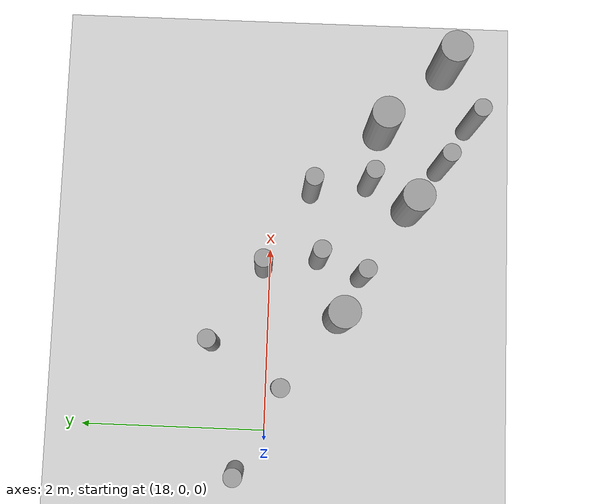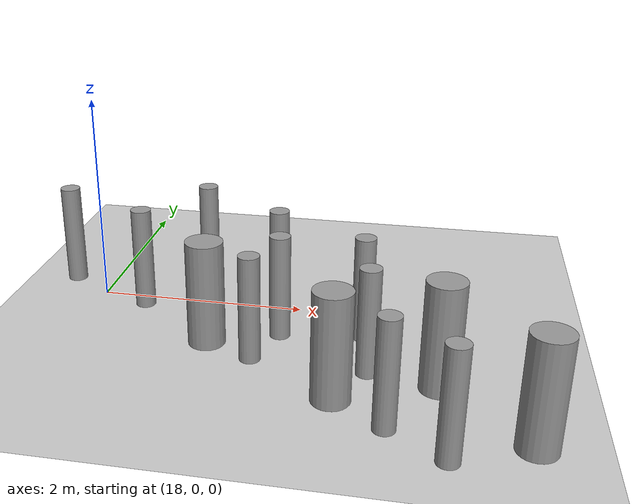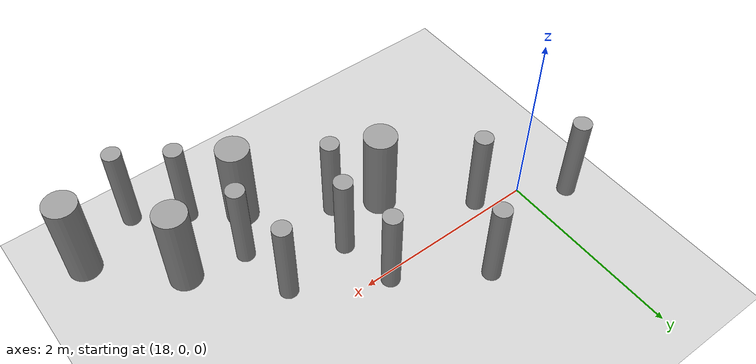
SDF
<sdf version="1.6">
 <world name="default">
  <model name="ground_plane">
   <static>1</static>
   <link name="link">
    <collision name="collision">
     <geometry><plane><normal>0 0 1</normal><size>100 100</size></plane></geometry>
     <surface><friction><ode><mu>100</mu><mu2>50</mu2></ode></friction></surface>
    </collision>
    <visual name="visual">
     <cast_shadows>0</cast_shadows>
     <geometry><plane><normal>0 0 1</normal><size>100 100</size></plane></geometry>
     <material>
      <script><uri>file://media/materials/scripts/gazebo.material</uri><name>Gazebo/Grey</name></script>
     </material>
    </visual>
   </link>
  </model>
  <model name="cyl_wall_clone_clone_1_clone_1">
   <link name="link_0">
    <pose>-2.73893 -0.366465 0 0 -0 0</pose>
    <inertial>
     <mass>0.0374993</mass>
     <inertia>
      <ixx>0.00321281</ixx>
      <ixy>0</ixy>
      <ixz>0</ixz>
      <iyy>0.00321281</iyy>
      <iyz>0</iyz>
      <izz>0.000175774</izz>
     </inertia>
    </inertial>
    <visual name="visual">
     <geometry><cylinder><radius>0.0968661</radius><length>1</length></cylinder></geometry>
     <material>
      <lighting>1</lighting>
      <script><uri>file://media/materials/scripts/gazebo.material</uri><name>Gazebo/Grey</name></script>
      <ambient>0.3 0.3 0.3 1</ambient>
      <diffuse>0.7 0.7 0.7 1</diffuse>
      <specular>0.01 0.01 0.01 1</specular>
      <emissive>0 0 0 1</emissive>
     </material>
    </visual>
    <collision name="collision">
     <geometry><cylinder><radius>0.096866</radius><length>1</length></cylinder></geometry>
     <surface>
      <friction>
       <ode><mu>1</mu><mu2>1</mu2><fdir1>0 0 0</fdir1><slip1>0</slip1><slip2>0</slip2></ode>
       <torsional>
        <coefficient>1</coefficient>
        <patch_radius>0</patch_radius>
        <surface_radius>0</surface_radius>
        <use_patch_radius>1</use_patch_radius>
        <ode><slip>0</slip></ode>
       </torsional>
      </friction>
      <bounce><restitution_coefficient>0</restitution_coefficient><threshold>1e+06</threshold></bounce>
      <contact>
       <collide_without_contact>0</collide_without_contact>
       <collide_without_contact_bitmask>1</collide_without_contact_bitmask>
       <collide_bitmask>1</collide_bitmask>
       <ode>
        <soft_cfm>0</soft_cfm>
        <soft_erp>0.2</soft_erp>
        <kp>1e+13</kp>
        <kd>1</kd>
        <max_vel>0.01</max_vel>
        <min_depth>0</min_depth>
       </ode>
       <bullet>
        <split_impulse>1</split_impulse>
        <split_impulse_penetration_threshold>-0.01</split_impulse_penetration_threshold>
        <soft_cfm>0</soft_cfm>
        <soft_erp>0.2</soft_erp>
        <kp>1e+13</kp>
        <kd>1</kd>
       </bullet>
      </contact>
     </surface>
    </collision>
   </link>
   <link name="link_0_clone">
    <pose>-1.73893 0.61877 0 0 -0 0</pose>
    <inertial>
     <mass>0.0374993</mass>
     <inertia>
      <ixx>0.00321281</ixx>
      <ixy>0</ixy>
      <ixz>0</ixz>
      <iyy>0.00321281</iyy>
      <iyz>0</iyz>
      <izz>0.000175774</izz>
     </inertia>
    </inertial>
    <visual name="visual">
     <geometry><cylinder><radius>0.0968661</radius><length>1</length></cylinder></geometry>
     <material>
      <lighting>1</lighting>
      <script><uri>file://media/materials/scripts/gazebo.material</uri><name>Gazebo/Grey</name></script>
      <ambient>0.3 0.3 0.3 1</ambient>
      <diffuse>0.7 0.7 0.7 1</diffuse>
      <specular>0.01 0.01 0.01 1</specular>
      <emissive>0 0 0 1</emissive>
      <shader type="pixel"/>
     </material>
    </visual>
    <collision name="collision">
     <geometry><cylinder><radius>0.096866</radius><length>1</length></cylinder></geometry>
     <surface>
      <friction>
       <ode><mu>1</mu><mu2>1</mu2><fdir1>0 0 0</fdir1><slip1>0</slip1><slip2>0</slip2></ode>
       <torsional>
        <coefficient>1</coefficient>
        <patch_radius>0</patch_radius>
        <surface_radius>0</surface_radius>
        <use_patch_radius>1</use_patch_radius>
        <ode><slip>0</slip></ode>
       </torsional>
      </friction>
      <bounce><restitution_coefficient>0</restitution_coefficient><threshold>1e+06</threshold></bounce>
      <contact>
       <collide_without_contact>0</collide_without_contact>
       <collide_without_contact_bitmask>1</collide_without_contact_bitmask>
       <collide_bitmask>1</collide_bitmask>
       <ode>
        <soft_cfm>0</soft_cfm>
        <soft_erp>0.2</soft_erp>
        <kp>1e+13</kp>
        <kd>1</kd>
        <max_vel>0.01</max_vel>
        <min_depth>0</min_depth>
       </ode>
       <bullet>
        <split_impulse>1</split_impulse>
        <split_impulse_penetration_threshold>-0.01</split_impulse_penetration_threshold>
        <soft_cfm>0</soft_cfm>
        <soft_erp>0.2</soft_erp>
        <kp>1e+13</kp>
        <kd>1</kd>
       </bullet>
      </contact>
     </surface>
    </collision>
   </link>
   <link name="link_0_clone_clone">
    <pose>-0.327073 0.143919 0 0 -0 0</pose>
    <inertial>
     <mass>0.0374993</mass>
     <inertia>
      <ixx>0.00321281</ixx>
      <ixy>0</ixy>
      <ixz>0</ixz>
      <iyy>0.00321281</iyy>
      <iyz>0</iyz>
      <izz>0.000175774</izz>
     </inertia>
    </inertial>
    <visual name="visual">
     <geometry><cylinder><radius>0.0968661</radius><length>1</length></cylinder></geometry>
     <material>
      <lighting>1</lighting>
      <script><uri>file://media/materials/scripts/gazebo.material</uri><name>Gazebo/Grey</name></script>
      <ambient>0.3 0.3 0.3 1</ambient>
      <diffuse>0.7 0.7 0.7 1</diffuse>
      <specular>0.01 0.01 0.01 1</specular>
      <emissive>0 0 0 1</emissive>
      <shader type="pixel"/>
     </material>
    </visual>
    <collision name="collision">
     <geometry><cylinder><radius>0.096866</radius><length>1</length></cylinder></geometry>
     <surface>
      <friction>
       <ode><mu>1</mu><mu2>1</mu2><fdir1>0 0 0</fdir1><slip1>0</slip1><slip2>0</slip2></ode>
       <torsional>
        <coefficient>1</coefficient>
        <patch_radius>0</patch_radius>
        <surface_radius>0</surface_radius>
        <use_patch_radius>1</use_patch_radius>
        <ode><slip>0</slip></ode>
       </torsional>
      </friction>
      <bounce><restitution_coefficient>0</restitution_coefficient><threshold>1e+06</threshold></bounce>
      <contact>
       <collide_without_contact>0</collide_without_contact>
       <collide_without_contact_bitmask>1</collide_without_contact_bitmask>
       <collide_bitmask>1</collide_bitmask>
       <ode>
        <soft_cfm>0</soft_cfm>
        <soft_erp>0.2</soft_erp>
        <kp>1e+13</kp>
        <kd>1</kd>
        <max_vel>0.01</max_vel>
        <min_depth>0</min_depth>
       </ode>
       <bullet>
        <split_impulse>1</split_impulse>
        <split_impulse_penetration_threshold>-0.01</split_impulse_penetration_threshold>
        <soft_cfm>0</soft_cfm>
        <soft_erp>0.2</soft_erp>
        <kp>1e+13</kp>
        <kd>1</kd>
       </bullet>
      </contact>
     </surface>
    </collision>
   </link>
   <link name="link_0_clone_clone_0">
    <pose>1.26107 -0.419359 0 0 -0 0</pose>
    <inertial>
     <mass>0.0374993</mass>
     <inertia>
      <ixx>0.00321281</ixx>
      <ixy>0</ixy>
      <ixz>0</ixz>
      <iyy>0.00321281</iyy>
      <iyz>0</iyz>
      <izz>0.000175774</izz>
     </inertia>
    </inertial>
    <visual name="visual">
     <geometry><cylinder><radius>0.0968661</radius><length>1</length></cylinder></geometry>
     <material>
      <lighting>1</lighting>
      <script><uri>file://media/materials/scripts/gazebo.material</uri><name>Gazebo/Grey</name></script>
      <ambient>0.3 0.3 0.3 1</ambient>
      <diffuse>0.7 0.7 0.7 1</diffuse>
      <specular>0.01 0.01 0.01 1</specular>
      <emissive>0 0 0 1</emissive>
      <shader type="pixel"/>
     </material>
    </visual>
    <collision name="collision">
     <geometry><cylinder><radius>0.096866</radius><length>1</length></cylinder></geometry>
     <surface>
      <friction>
       <ode><mu>1</mu><mu2>1</mu2><fdir1>0 0 0</fdir1><slip1>0</slip1><slip2>0</slip2></ode>
       <torsional>
        <coefficient>1</coefficient>
        <patch_radius>0</patch_radius>
        <surface_radius>0</surface_radius>
        <use_patch_radius>1</use_patch_radius>
        <ode><slip>0</slip></ode>
       </torsional>
      </friction>
      <bounce><restitution_coefficient>0</restitution_coefficient><threshold>1e+06</threshold></bounce>
      <contact>
       <collide_without_contact>0</collide_without_contact>
       <collide_without_contact_bitmask>1</collide_without_contact_bitmask>
       <collide_bitmask>1</collide_bitmask>
       <ode>
        <soft_cfm>0</soft_cfm>
        <soft_erp>0.2</soft_erp>
        <kp>1e+13</kp>
        <kd>1</kd>
        <max_vel>0.01</max_vel>
        <min_depth>0</min_depth>
       </ode>
       <bullet>
        <split_impulse>1</split_impulse>
        <split_impulse_penetration_threshold>-0.01</split_impulse_penetration_threshold>
        <soft_cfm>0</soft_cfm>
        <soft_erp>0.2</soft_erp>
        <kp>1e+13</kp>
        <kd>1</kd>
       </bullet>
      </contact>
     </surface>
    </collision>
   </link>
   <link name="link_0_clone_clone_1">
    <pose>-1.73893 -0.277168 0 0 -0 0</pose>
    <inertial>
     <mass>0.0374993</mass>
     <inertia>
      <ixx>0.00321281</ixx>
      <ixy>0</ixy>
      <ixz>0</ixz>
      <iyy>0.00321281</iyy>
      <iyz>0</iyz>
      <izz>0.000175774</izz>
     </inertia>
    </inertial>
    <visual name="visual">
     <geometry><cylinder><radius>0.0968661</radius><length>1</length></cylinder></geometry>
     <material>
      <lighting>1</lighting>
      <script><uri>file://media/materials/scripts/gazebo.material</uri><name>Gazebo/Grey</name></script>
      <ambient>0.3 0.3 0.3 1</ambient>
      <diffuse>0.7 0.7 0.7 1</diffuse>
      <specular>0.01 0.01 0.01 1</specular>
      <emissive>0 0 0 1</emissive>
      <shader type="pixel"/>
     </material>
    </visual>
    <collision name="collision">
     <geometry><cylinder><radius>0.096866</radius><length>1</length></cylinder></geometry>
     <surface>
      <friction>
       <ode><mu>1</mu><mu2>1</mu2><fdir1>0 0 0</fdir1><slip1>0</slip1><slip2>0</slip2></ode>
       <torsional>
        <coefficient>1</coefficient>
        <patch_radius>0</patch_radius>
        <surface_radius>0</surface_radius>
        <use_patch_radius>1</use_patch_radius>
        <ode><slip>0</slip></ode>
       </torsional>
      </friction>
      <bounce><restitution_coefficient>0</restitution_coefficient><threshold>1e+06</threshold></bounce>
      <contact>
       <collide_without_contact>0</collide_without_contact>
       <collide_without_contact_bitmask>1</collide_without_contact_bitmask>
       <collide_bitmask>1</collide_bitmask>
       <ode>
        <soft_cfm>0</soft_cfm>
        <soft_erp>0.2</soft_erp>
        <kp>1e+13</kp>
        <kd>1</kd>
        <max_vel>0.01</max_vel>
        <min_depth>0</min_depth>
       </ode>
       <bullet>
        <split_impulse>1</split_impulse>
        <split_impulse_penetration_threshold>-0.01</split_impulse_penetration_threshold>
        <soft_cfm>0</soft_cfm>
        <soft_erp>0.2</soft_erp>
        <kp>1e+13</kp>
        <kd>1</kd>
       </bullet>
      </contact>
     </surface>
    </collision>
   </link>
   <link name="link_0_clone_clone_2">
    <pose>-0.738934 0.593961 0 0 -0 0</pose>
    <inertial>
     <mass>0.0374993</mass>
     <inertia>
      <ixx>0.00321281</ixx>
      <ixy>0</ixy>
      <ixz>0</ixz>
      <iyy>0.00321281</iyy>
      <iyz>0</iyz>
      <izz>0.000175774</izz>
     </inertia>
    </inertial>
    <visual name="visual">
     <geometry><cylinder><radius>0.0968661</radius><length>1</length></cylinder></geometry>
     <material>
      <lighting>1</lighting>
      <script><uri>file://media/materials/scripts/gazebo.material</uri><name>Gazebo/Grey</name></script>
      <ambient>0.3 0.3 0.3 1</ambient>
      <diffuse>0.7 0.7 0.7 1</diffuse>
      <specular>0.01 0.01 0.01 1</specular>
      <emissive>0 0 0 1</emissive>
      <shader type="pixel"/>
     </material>
    </visual>
    <collision name="collision">
     <geometry><cylinder><radius>0.096866</radius><length>1</length></cylinder></geometry>
     <surface>
      <friction>
       <ode><mu>1</mu><mu2>1</mu2><fdir1>0 0 0</fdir1><slip1>0</slip1><slip2>0</slip2></ode>
       <torsional>
        <coefficient>1</coefficient>
        <patch_radius>0</patch_radius>
        <surface_radius>0</surface_radius>
        <use_patch_radius>1</use_patch_radius>
        <ode><slip>0</slip></ode>
       </torsional>
      </friction>
      <bounce><restitution_coefficient>0</restitution_coefficient><threshold>1e+06</threshold></bounce>
      <contact>
       <collide_without_contact>0</collide_without_contact>
       <collide_without_contact_bitmask>1</collide_without_contact_bitmask>
       <collide_bitmask>1</collide_bitmask>
       <ode>
        <soft_cfm>0</soft_cfm>
        <soft_erp>0.2</soft_erp>
        <kp>1e+13</kp>
        <kd>1</kd>
        <max_vel>0.01</max_vel>
        <min_depth>0</min_depth>
       </ode>
       <bullet>
        <split_impulse>1</split_impulse>
        <split_impulse_penetration_threshold>-0.01</split_impulse_penetration_threshold>
        <soft_cfm>0</soft_cfm>
        <soft_erp>0.2</soft_erp>
        <kp>1e+13</kp>
        <kd>1</kd>
       </bullet>
      </contact>
     </surface>
    </collision>
   </link>
   <link name="link_0_clone_clone_3">
    <pose>0.261066 0.624849 0 0 -0 0</pose>
    <inertial>
     <mass>0.0374993</mass>
     <inertia>
      <ixx>0.00321281</ixx>
      <ixy>0</ixy>
      <ixz>0</ixz>
      <iyy>0.00321281</iyy>
      <iyz>0</iyz>
      <izz>0.000175774</izz>
     </inertia>
    </inertial>
    <visual name="visual">
     <geometry><cylinder><radius>0.0968661</radius><length>1</length></cylinder></geometry>
     <material>
      <lighting>1</lighting>
      <script><uri>file://media/materials/scripts/gazebo.material</uri><name>Gazebo/Grey</name></script>
      <ambient>0.3 0.3 0.3 1</ambient>
      <diffuse>0.7 0.7 0.7 1</diffuse>
      <specular>0.01 0.01 0.01 1</specular>
      <emissive>0 0 0 1</emissive>
      <shader type="pixel"/>
     </material>
    </visual>
    <collision name="collision">
     <geometry><cylinder><radius>0.096866</radius><length>1</length></cylinder></geometry>
     <surface>
      <friction>
       <ode><mu>1</mu><mu2>1</mu2><fdir1>0 0 0</fdir1><slip1>0</slip1><slip2>0</slip2></ode>
       <torsional>
        <coefficient>1</coefficient>
        <patch_radius>0</patch_radius>
        <surface_radius>0</surface_radius>
        <use_patch_radius>1</use_patch_radius>
        <ode><slip>0</slip></ode>
       </torsional>
      </friction>
      <bounce><restitution_coefficient>0</restitution_coefficient><threshold>1e+06</threshold></bounce>
      <contact>
       <collide_without_contact>0</collide_without_contact>
       <collide_without_contact_bitmask>1</collide_without_contact_bitmask>
       <collide_bitmask>1</collide_bitmask>
       <ode>
        <soft_cfm>0</soft_cfm>
        <soft_erp>0.2</soft_erp>
        <kp>1e+13</kp>
        <kd>1</kd>
        <max_vel>0.01</max_vel>
        <min_depth>0</min_depth>
       </ode>
       <bullet>
        <split_impulse>1</split_impulse>
        <split_impulse_penetration_threshold>-0.01</split_impulse_penetration_threshold>
        <soft_cfm>0</soft_cfm>
        <soft_erp>0.2</soft_erp>
        <kp>1e+13</kp>
        <kd>1</kd>
       </bullet>
      </contact>
     </surface>
    </collision>
   </link>
   <link name="link_0_clone_clone_4">
    <pose>-0.239049 -0.353105 0 0 -0 0</pose>
    <inertial>
     <mass>0.0374993</mass>
     <inertia>
      <ixx>0.00321281</ixx>
      <ixy>0</ixy>
      <ixz>0</ixz>
      <iyy>0.00321281</iyy>
      <iyz>0</iyz>
      <izz>0.000175774</izz>
     </inertia>
    </inertial>
    <visual name="visual">
     <geometry><cylinder><radius>0.0968661</radius><length>1</length></cylinder></geometry>
     <material>
      <lighting>1</lighting>
      <script><uri>file://media/materials/scripts/gazebo.material</uri><name>Gazebo/Grey</name></script>
      <ambient>0.3 0.3 0.3 1</ambient>
      <diffuse>0.7 0.7 0.7 1</diffuse>
      <specular>0.01 0.01 0.01 1</specular>
      <emissive>0 0 0 1</emissive>
      <shader type="pixel"/>
     </material>
    </visual>
    <collision name="collision">
     <geometry><cylinder><radius>0.096866</radius><length>1</length></cylinder></geometry>
     <surface>
      <friction>
       <ode><mu>1</mu><mu2>1</mu2><fdir1>0 0 0</fdir1><slip1>0</slip1><slip2>0</slip2></ode>
       <torsional>
        <coefficient>1</coefficient>
        <patch_radius>0</patch_radius>
        <surface_radius>0</surface_radius>
        <use_patch_radius>1</use_patch_radius>
        <ode><slip>0</slip></ode>
       </torsional>
      </friction>
      <bounce><restitution_coefficient>0</restitution_coefficient><threshold>1e+06</threshold></bounce>
      <contact>
       <collide_without_contact>0</collide_without_contact>
       <collide_without_contact_bitmask>1</collide_without_contact_bitmask>
       <collide_bitmask>1</collide_bitmask>
       <ode>
        <soft_cfm>0</soft_cfm>
        <soft_erp>0.2</soft_erp>
        <kp>1e+13</kp>
        <kd>1</kd>
        <max_vel>0.01</max_vel>
        <min_depth>0</min_depth>
       </ode>
       <bullet>
        <split_impulse>1</split_impulse>
        <split_impulse_penetration_threshold>-0.01</split_impulse_penetration_threshold>
        <soft_cfm>0</soft_cfm>
        <soft_erp>0.2</soft_erp>
        <kp>1e+13</kp>
        <kd>1</kd>
       </bullet>
      </contact>
     </surface>
    </collision>
   </link>
   <link name="link_0_clone_clone_5">
    <pose>0.672792 0.143919 0 0 -0 0</pose>
    <inertial>
     <mass>0.0374993</mass>
     <inertia>
      <ixx>0.00321281</ixx>
      <ixy>0</ixy>
      <ixz>0</ixz>
      <iyy>0.00321281</iyy>
      <iyz>0</iyz>
      <izz>0.000175774</izz>
     </inertia>
    </inertial>
    <visual name="visual">
     <geometry><cylinder><radius>0.0968661</radius><length>1</length></cylinder></geometry>
     <material>
      <lighting>1</lighting>
      <script><uri>file://media/materials/scripts/gazebo.material</uri><name>Gazebo/Grey</name></script>
      <ambient>0.3 0.3 0.3 1</ambient>
      <diffuse>0.7 0.7 0.7 1</diffuse>
      <specular>0.01 0.01 0.01 1</specular>
      <emissive>0 0 0 1</emissive>
      <shader type="pixel"/>
     </material>
    </visual>
    <collision name="collision">
     <geometry><cylinder><radius>0.096866</radius><length>1</length></cylinder></geometry>
     <surface>
      <friction>
       <ode><mu>1</mu><mu2>1</mu2><fdir1>0 0 0</fdir1><slip1>0</slip1><slip2>0</slip2></ode>
       <torsional>
        <coefficient>1</coefficient>
        <patch_radius>0</patch_radius>
        <surface_radius>0</surface_radius>
        <use_patch_radius>1</use_patch_radius>
        <ode><slip>0</slip></ode>
       </torsional>
      </friction>
      <bounce><restitution_coefficient>0</restitution_coefficient><threshold>1e+06</threshold></bounce>
      <contact>
       <collide_without_contact>0</collide_without_contact>
       <collide_without_contact_bitmask>1</collide_without_contact_bitmask>
       <collide_bitmask>1</collide_bitmask>
       <ode>
        <soft_cfm>0</soft_cfm>
        <soft_erp>0.2</soft_erp>
        <kp>1e+13</kp>
        <kd>1</kd>
        <max_vel>0.01</max_vel>
        <min_depth>0</min_depth>
       </ode>
       <bullet>
        <split_impulse>1</split_impulse>
        <split_impulse_penetration_threshold>-0.01</split_impulse_penetration_threshold>
        <soft_cfm>0</soft_cfm>
        <soft_erp>0.2</soft_erp>
        <kp>1e+13</kp>
        <kd>1</kd>
       </bullet>
      </contact>
     </surface>
    </collision>
   </link>
   <link name="link_0_clone_clone_6">
    <pose>1.84596 -0.433423 0 0 -0 0</pose>
    <inertial>
     <mass>0.0374993</mass>
     <inertia>
      <ixx>0.00321281</ixx>
      <ixy>0</ixy>
      <ixz>0</ixz>
      <iyy>0.00321281</iyy>
      <iyz>0</iyz>
      <izz>0.000175774</izz>
     </inertia>
    </inertial>
    <visual name="visual">
     <geometry><cylinder><radius>0.0968661</radius><length>1</length></cylinder></geometry>
     <material>
      <lighting>1</lighting>
      <script><uri>file://media/materials/scripts/gazebo.material</uri><name>Gazebo/Grey</name></script>
      <ambient>0.3 0.3 0.3 1</ambient>
      <diffuse>0.7 0.7 0.7 1</diffuse>
      <specular>0.01 0.01 0.01 1</specular>
      <emissive>0 0 0 1</emissive>
      <shader type="pixel"/>
     </material>
    </visual>
    <collision name="collision">
     <geometry><cylinder><radius>0.096866</radius><length>1</length></cylinder></geometry>
     <surface>
      <friction>
       <ode><mu>1</mu><mu2>1</mu2><fdir1>0 0 0</fdir1><slip1>0</slip1><slip2>0</slip2></ode>
       <torsional>
        <coefficient>1</coefficient>
        <patch_radius>0</patch_radius>
        <surface_radius>0</surface_radius>
        <use_patch_radius>1</use_patch_radius>
        <ode><slip>0</slip></ode>
       </torsional>
      </friction>
      <bounce><restitution_coefficient>0</restitution_coefficient><threshold>1e+06</threshold></bounce>
      <contact>
       <collide_without_contact>0</collide_without_contact>
       <collide_without_contact_bitmask>1</collide_without_contact_bitmask>
       <collide_bitmask>1</collide_bitmask>
       <ode>
        <soft_cfm>0</soft_cfm>
        <soft_erp>0.2</soft_erp>
        <kp>1e+13</kp>
        <kd>1</kd>
        <max_vel>0.01</max_vel>
        <min_depth>0</min_depth>
       </ode>
       <bullet>
        <split_impulse>1</split_impulse>
        <split_impulse_penetration_threshold>-0.01</split_impulse_penetration_threshold>
        <soft_cfm>0</soft_cfm>
        <soft_erp>0.2</soft_erp>
        <kp>1e+13</kp>
        <kd>1</kd>
       </bullet>
      </contact>
     </surface>
    </collision>
   </link>
   <link name="link_1">
    <pose>-0.738934 -0.397931 0 0 -0 0</pose>
    <inertial>
     <mass>0.117398</mass>
     <inertia>
      <ixx>0.0106445</ixx>
      <ixy>0</ixy>
      <ixz>0</ixz>
      <iyy>0.0106445</iyy>
      <iyz>0</iyz>
      <izz>0.00172278</izz>
     </inertia>
    </inertial>
    <visual name="visual">
     <geometry><cylinder><radius>0.171317</radius><length>1</length></cylinder></geometry>
     <material>
      <lighting>1</lighting>
      <script><uri>file://media/materials/scripts/gazebo.material</uri><name>Gazebo/Grey</name></script>
      <ambient>0.3 0.3 0.3 1</ambient>
      <diffuse>0.7 0.7 0.7 1</diffuse>
      <specular>0.01 0.01 0.01 1</specular>
      <emissive>0 0 0 1</emissive>
     </material>
    </visual>
    <collision name="collision">
     <geometry><cylinder><radius>0.171317</radius><length>1</length></cylinder></geometry>
     <surface>
      <friction>
       <ode><mu>1</mu><mu2>1</mu2><fdir1>0 0 0</fdir1><slip1>0</slip1><slip2>0</slip2></ode>
       <torsional>
        <coefficient>1</coefficient>
        <patch_radius>0</patch_radius>
        <surface_radius>0</surface_radius>
        <use_patch_radius>1</use_patch_radius>
        <ode><slip>0</slip></ode>
       </torsional>
      </friction>
      <bounce><restitution_coefficient>0</restitution_coefficient><threshold>1e+06</threshold></bounce>
      <contact>
       <collide_without_contact>0</collide_without_contact>
       <collide_without_contact_bitmask>1</collide_without_contact_bitmask>
       <collide_bitmask>1</collide_bitmask>
       <ode>
        <soft_cfm>0</soft_cfm>
        <soft_erp>0.2</soft_erp>
        <kp>1e+13</kp>
        <kd>1</kd>
        <max_vel>0.01</max_vel>
        <min_depth>0</min_depth>
       </ode>
       <bullet>
        <split_impulse>1</split_impulse>
        <split_impulse_penetration_threshold>-0.01</split_impulse_penetration_threshold>
        <soft_cfm>0</soft_cfm>
        <soft_erp>0.2</soft_erp>
        <kp>1e+13</kp>
        <kd>1</kd>
       </bullet>
      </contact>
     </surface>
    </collision>
   </link>
   <link name="link_1_clone">
    <pose>0.697784 -0.380861 0 0 -0 0</pose>
    <inertial>
     <mass>0.117398</mass>
     <inertia>
      <ixx>0.0106445</ixx>
      <ixy>0</ixy>
      <ixz>0</ixz>
      <iyy>0.0106445</iyy>
      <iyz>0</iyz>
      <izz>0.00172278</izz>
     </inertia>
    </inertial>
    <visual name="visual">
     <geometry><cylinder><radius>0.171317</radius><length>1</length></cylinder></geometry>
     <material>
      <lighting>1</lighting>
      <script><uri>file://media/materials/scripts/gazebo.material</uri><name>Gazebo/Grey</name></script>
      <ambient>0.3 0.3 0.3 1</ambient>
      <diffuse>0.7 0.7 0.7 1</diffuse>
      <specular>0.01 0.01 0.01 1</specular>
      <emissive>0 0 0 1</emissive>
      <shader type="pixel"/>
     </material>
    </visual>
    <collision name="collision">
     <geometry><cylinder><radius>0.171317</radius><length>1</length></cylinder></geometry>
     <surface>
      <friction>
       <ode><mu>1</mu><mu2>1</mu2><fdir1>0 0 0</fdir1><slip1>0</slip1><slip2>0</slip2></ode>
       <torsional>
        <coefficient>1</coefficient>
        <patch_radius>0</patch_radius>
        <surface_radius>0</surface_radius>
        <use_patch_radius>1</use_patch_radius>
        <ode><slip>0</slip></ode>
       </torsional>
      </friction>
      <bounce><restitution_coefficient>0</restitution_coefficient><threshold>1e+06</threshold></bounce>
      <contact>
       <collide_without_contact>0</collide_without_contact>
       <collide_without_contact_bitmask>1</collide_without_contact_bitmask>
       <collide_bitmask>1</collide_bitmask>
       <ode>
        <soft_cfm>0</soft_cfm>
        <soft_erp>0.2</soft_erp>
        <kp>1e+13</kp>
        <kd>1</kd>
        <max_vel>0.01</max_vel>
        <min_depth>0</min_depth>
       </ode>
       <bullet>
        <split_impulse>1</split_impulse>
        <split_impulse_penetration_threshold>-0.01</split_impulse_penetration_threshold>
        <soft_cfm>0</soft_cfm>
        <soft_erp>0.2</soft_erp>
        <kp>1e+13</kp>
        <kd>1</kd>
       </bullet>
      </contact>
     </surface>
    </collision>
   </link>
   <link name="link_1_clone_0">
    <pose>1.26107 0.358974 0 0 -0 0</pose>
    <inertial>
     <mass>0.117398</mass>
     <inertia>
      <ixx>0.0106445</ixx>
      <ixy>0</ixy>
      <ixz>0</ixz>
      <iyy>0.0106445</iyy>
      <iyz>0</iyz>
      <izz>0.00172278</izz>
     </inertia>
    </inertial>
    <visual name="visual">
     <geometry><cylinder><radius>0.171317</radius><length>1</length></cylinder></geometry>
     <material>
      <lighting>1</lighting>
      <script><uri>file://media/materials/scripts/gazebo.material</uri><name>Gazebo/Grey</name></script>
      <ambient>0.3 0.3 0.3 1</ambient>
      <diffuse>0.7 0.7 0.7 1</diffuse>
      <specular>0.01 0.01 0.01 1</specular>
      <emissive>0 0 0 1</emissive>
      <shader type="pixel"/>
     </material>
    </visual>
    <collision name="collision">
     <geometry><cylinder><radius>0.171317</radius><length>1</length></cylinder></geometry>
     <surface>
      <friction>
       <ode><mu>1</mu><mu2>1</mu2><fdir1>0 0 0</fdir1><slip1>0</slip1><slip2>0</slip2></ode>
       <torsional>
        <coefficient>1</coefficient>
        <patch_radius>0</patch_radius>
        <surface_radius>0</surface_radius>
        <use_patch_radius>1</use_patch_radius>
        <ode><slip>0</slip></ode>
       </torsional>
      </friction>
      <bounce><restitution_coefficient>0</restitution_coefficient><threshold>1e+06</threshold></bounce>
      <contact>
       <collide_without_contact>0</collide_without_contact>
       <collide_without_contact_bitmask>1</collide_without_contact_bitmask>
       <collide_bitmask>1</collide_bitmask>
       <ode>
        <soft_cfm>0</soft_cfm>
        <soft_erp>0.2</soft_erp>
        <kp>1e+13</kp>
        <kd>1</kd>
        <max_vel>0.01</max_vel>
        <min_depth>0</min_depth>
       </ode>
       <bullet>
        <split_impulse>1</split_impulse>
        <split_impulse_penetration_threshold>-0.01</split_impulse_penetration_threshold>
        <soft_cfm>0</soft_cfm>
        <soft_erp>0.2</soft_erp>
        <kp>1e+13</kp>
        <kd>1</kd>
       </bullet>
      </contact>
     </surface>
    </collision>
   </link>
   <link name="link_1_clone_1">
    <pose>2.26107 0.143919 0 0 -0 0</pose>
    <inertial>
     <mass>0.117398</mass>
     <inertia>
      <ixx>0.0106445</ixx>
      <ixy>0</ixy>
      <ixz>0</ixz>
      <iyy>0.0106445</iyy>
      <iyz>0</iyz>
      <izz>0.00172278</izz>
     </inertia>
    </inertial>
    <visual name="visual">
     <geometry><cylinder><radius>0.171317</radius><length>1</length></cylinder></geometry>
     <material>
      <lighting>1</lighting>
      <script><uri>file://media/materials/scripts/gazebo.material</uri><name>Gazebo/Grey</name></script>
      <ambient>0.3 0.3 0.3 1</ambient>
      <diffuse>0.7 0.7 0.7 1</diffuse>
      <specular>0.01 0.01 0.01 1</specular>
      <emissive>0 0 0 1</emissive>
      <shader type="pixel"/>
     </material>
    </visual>
    <collision name="collision">
     <geometry><cylinder><radius>0.171317</radius><length>1</length></cylinder></geometry>
     <surface>
      <friction>
       <ode><mu>1</mu><mu2>1</mu2><fdir1>0 0 0</fdir1><slip1>0</slip1><slip2>0</slip2></ode>
       <torsional>
        <coefficient>1</coefficient>
        <patch_radius>0</patch_radius>
        <surface_radius>0</surface_radius>
        <use_patch_radius>1</use_patch_radius>
        <ode><slip>0</slip></ode>
       </torsional>
      </friction>
      <bounce><restitution_coefficient>0</restitution_coefficient><threshold>1e+06</threshold></bounce>
      <contact>
       <collide_without_contact>0</collide_without_contact>
       <collide_without_contact_bitmask>1</collide_without_contact_bitmask>
       <collide_bitmask>1</collide_bitmask>
       <ode>
        <soft_cfm>0</soft_cfm>
        <soft_erp>0.2</soft_erp>
        <kp>1e+13</kp>
        <kd>1</kd>
        <max_vel>0.01</max_vel>
        <min_depth>0</min_depth>
       </ode>
       <bullet>
        <split_impulse>1</split_impulse>
        <split_impulse_penetration_threshold>-0.01</split_impulse_penetration_threshold>
        <soft_cfm>0</soft_cfm>
        <soft_erp>0.2</soft_erp>
        <kp>1e+13</kp>
        <kd>1</kd>
       </bullet>
      </contact>
     </surface>
    </collision>
   </link>
   <static>1</static>
   <pose>20.0963 -0.820223 0.5 0 0 -0.549185</pose>
  </model>
 </world>
</sdf>
